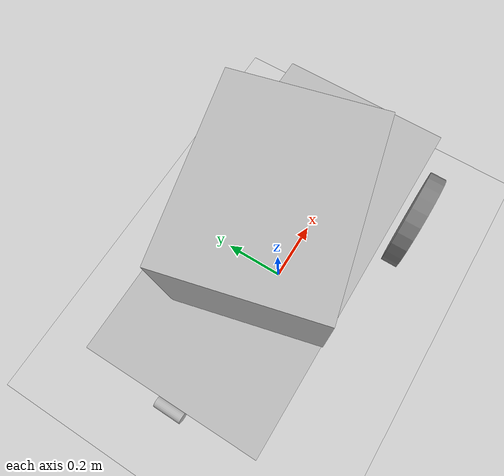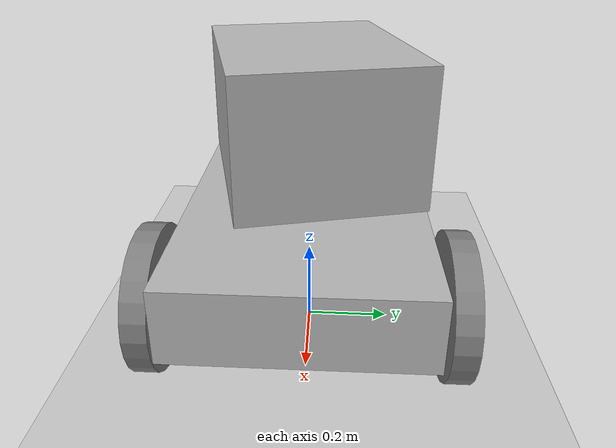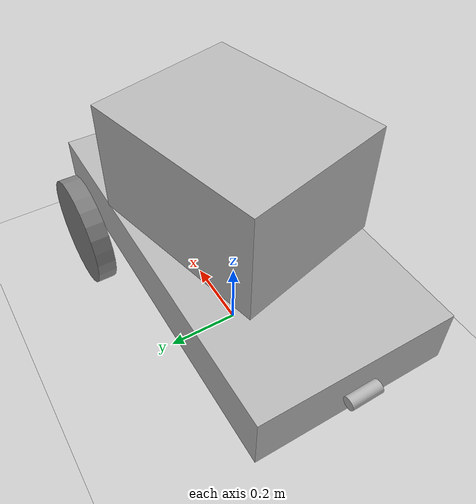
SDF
<?xml version="1.0" ?>

<sdf version="1.6">
  <world name="default">

    <include>
      <uri>model://sun</uri>
    </include>
    <include>
      <uri>model://ground_plane</uri>
    </include>
    <include>
      <pose>0 0 2.33 0 0 0</pose>
      <uri>model://ground_plane</uri>
    </include>
    <include>
      <pose>0 0 0.33 0 0 0</pose>
      <name>dolly1_name</name>
      <uri>model://dolly</uri>
    </include>

  </world>
</sdf>

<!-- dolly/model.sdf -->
<sdf version="1.6">
  <model name='Dolly'>
    <pose>0 0 0.225 0 -0 0</pose>

    <link name='chassis'>
      <inertial>
        <mass>1.0</mass>
        <inertia>
          <ixx>0.0227</ixx>
          <ixy>0</ixy>
          <ixz>0</ixz>
          <iyy>0.0852</iyy>
          <iyz>0</iyz>
          <izz>0.1041</izz>
        </inertia>
      </inertial>
      <visual name='visual'>
        <geometry>
          <box>
            <size>1.0 0.5 0.15</size>
          </box>
        </geometry>
        <material>
          <script>
            <uri>model://dolly/materials/scripts</uri>
            <uri>model://dolly/materials/textures</uri>
            <name>Dolly/fur</name>
          </script>
        </material>
      </visual>

     <!-- RGB camera -->
      <sensor type="camera" name="sensor_camera_rgb">
        <always_on>1</always_on>
        <update_rate>60</update_rate>

        <camera name="camera_rgb">

        </camera>

        <plugin name="camera_plugin" filename="libgazebo_ros_camera.so">
          <ros>
            <namespace>diff_drive_robot</namespace>
            <remapping>image_raw:=custom_img</remapping>
            <remapping>camera_info:=custom_info</remapping>
          </ros>

          <camera_name>custom_rgb</camera_name>
          <frame_name>camera_rgb_frame</frame_name>
          <hack_baseline>0.07</hack_baseline>
        </plugin>
      </sensor>

      <visual name="box">
        <pose>0 0 0.08 0 0 0.24</pose>
        <geometry>
          <mesh>
            <uri>model://cardboard_box/meshes/cardboard_box.dae</uri>
            <scale>1.25931896 1.007455168 0.755591376</scale>
          </mesh>
        </geometry>
      </visual>
      <sensor name="sensor_ray" type="ray">
        <pose>0.5 0 0 0 0 0</pose>
        <ray>
          <scan>
            <horizontal>
              <samples>200</samples>
              <resolution>1.0</resolution>
              <min_angle>-1.0</min_angle>
              <max_angle>1.0</max_angle>
            </horizontal>
          </scan>
          <range>
            <min>0.05</min>
            <max>10.0</max>
          </range>
        </ray>
        <always_on>true</always_on>
        <visualize>true</visualize>
        <update_rate>100.0</update_rate>
        <plugin name="laser" filename="libgazebo_ros_ray_sensor.so">
          <ros>
            <namespace>/dolly</namespace>
            <remapping>~/out:=laser_scan</remapping>
          </ros>
          <output_type>sensor_msgs/LaserScan</output_type>
        </plugin>
      </sensor>
    </link>
    <link name='caster'>
      <pose>-0.3 0 -0.125 0 0 0</pose>
      <inertial>
        <mass>0.0415553</mass>
        <inertia>
          <ixx>7.97741e-05</ixx>
          <ixy>0</ixy>
          <ixz>0</ixz>
          <iyy>7.97741e-05</iyy>
          <iyz>0</iyz>
          <izz>7.97741e-05</izz>
        </inertia>
      </inertial>
      <visual name='visual'>
        <geometry>
          <sphere>
            <radius>0.1</radius>
          </sphere>
        </geometry>
        <material>
          <diffuse>0.5 0.5 0.5 1</diffuse>
          <ambient>0 0 0 1</ambient>
          <specular>1 1 1 1</specular>
          <emissive>0 0 0 1</emissive>
        </material>
      </visual>
      <collision name='collision'>
        <geometry>
          <sphere>
            <radius>0.1</radius>
          </sphere>
        </geometry>
        <surface>
          <friction>
            <ode>
              <mu>1</mu>
              <mu2>1</mu2>
              <slip1>0</slip1>
              <slip2>0</slip2>
            </ode>
          </friction>
          <contact>
            <ode>
              <soft_cfm>0</soft_cfm>
              <soft_erp>0.2</soft_erp>
              <kp>1e+13</kp>
              <kd>1</kd>
              <max_vel>0.01</max_vel>
              <min_depth>0</min_depth>
            </ode>
          </contact>
        </surface>
      </collision>
    </link>

    <link name='left_wheel'>
      <pose>0.3 0.3 -0.075 -1.5707 0 0</pose>
      <inertial>
        <mass>0.5</mass>
        <inertia>
          <ixx>0.0029</ixx>
          <ixy>0</ixy>
          <ixz>0</ixz>
          <iyy>0.0029</iyy>
          <iyz>0</iyz>
          <izz>0.0056</izz>
        </inertia>
      </inertial>
      <visual name='visual'>
        <geometry>
          <cylinder>
            <radius>0.15</radius>
            <length>0.05</length>
          </cylinder>
        </geometry>
        <material>
          <diffuse>0.5 0.5 0.5 1</diffuse>
          <ambient>0 0 0 1</ambient>
          <specular>1 1 1 1</specular>
          <emissive>0 0 0 1</emissive>
        </material>
      </visual>
      <collision name='collision'>
        <geometry>
          <sphere>
            <radius>0.15</radius>
          </sphere>
        </geometry>
        <surface>
          <friction>
            <ode>
              <mu>1</mu>
              <mu2>1</mu2>
              <slip1>0</slip1>
              <slip2>0</slip2>
            </ode>
          </friction>
          <contact>
            <ode>
              <soft_cfm>0</soft_cfm>
              <soft_erp>0.2</soft_erp>
              <kp>1e+13</kp>
              <kd>1</kd>
              <max_vel>0.01</max_vel>
              <min_depth>0.01</min_depth>
            </ode>
          </contact>
        </surface>
      </collision>
    </link>

    <link name='right_wheel'>
      <pose>0.3 -0.3 -0.075 -1.5707 0 0</pose>
      <inertial>
        <mass>0.5</mass>
        <inertia>
          <ixx>0.0029</ixx>
          <ixy>0</ixy>
          <ixz>0</ixz>
          <iyy>0.0029</iyy>
          <iyz>0</iyz>
          <izz>0.0056</izz>
        </inertia>
      </inertial>
      <visual name='visual'>
        <geometry>
          <cylinder>
            <radius>0.15</radius>
            <length>0.05</length>
          </cylinder>
        </geometry>
        <material>
          <diffuse>0.5 0.5 0.5 1</diffuse>
          <ambient>0 0 0 1</ambient>
          <specular>1 1 1 1</specular>
          <emissive>0 0 0 1</emissive>
        </material>
      </visual>
      <collision name='collision'>
        <geometry>
          <sphere>
            <radius>0.15</radius>
          </sphere>
        </geometry>
        <surface>
          <friction>
            <ode>
              <mu>1</mu>
              <mu2>1</mu2>
              <slip1>0</slip1>
              <slip2>0</slip2>
            </ode>
          </friction>
          <contact>
            <ode>
              <soft_cfm>0</soft_cfm>
              <soft_erp>0.2</soft_erp>
              <kp>1e+13</kp>
              <kd>1</kd>
              <max_vel>0.01</max_vel>
              <min_depth>0.01</min_depth>
            </ode>
          </contact>
        </surface>
      </collision>
    </link>

    <link name='tail'>
      <pose>-0.52 0 0 -1.6 0 0</pose>
      <inertial>
        <mass>0.0254232</mass>
        <inertia>
          <ixx>1.528e-05</ixx>
          <ixy>0</ixy>
          <ixz>0</ixz>
          <iyy>1.528e-05</iyy>
          <iyz>0</iyz>
          <izz>3.45e-06</izz>
        </inertia>
        <pose frame=''>0 0 -0.04 0 -0 0</pose>
      </inertial>
      <visual name='visual'>
        <geometry>
          <cylinder>
            <radius>0.016468</radius>
            <length>0.08</length>
          </cylinder>
        </geometry>
        <material>
          <script>
            <uri>model://dolly/materials/scripts</uri>
            <uri>model://dolly/materials/textures</uri>
            <name>Dolly/fur</name>
          </script>
        </material>
      </visual>
    </link>

    <joint name='left_wheel_joint' type='revolute'>
      <parent>chassis</parent>
      <child>left_wheel</child>
      <axis>
        <xyz>0 0 1</xyz>
        <limit>
          <lower>-1.79769e+308</lower>
          <upper>1.79769e+308</upper>
        </limit>
      </axis>
    </joint>

    <joint name='right_wheel_joint' type='revolute'>
      <parent>chassis</parent>
      <child>right_wheel</child>
      <axis>
        <xyz>0 0 1</xyz>
        <limit>
          <lower>-1.79769e+308</lower>
          <upper>1.79769e+308</upper>
        </limit>
      </axis>
    </joint>

    <joint name='caster_wheel' type='ball'>
      <parent>chassis</parent>
      <child>caster</child>
    </joint>

    <joint name='tail_joint' type='revolute'>
      <parent>chassis</parent>
      <child>tail</child>
      <pose>0 0 0.04 0 -0 0</pose>
      <axis>
        <xyz>1 0 0</xyz>
        <use_parent_model_frame>0</use_parent_model_frame>
        <limit>
          <lower>-1.79769e+308</lower>
          <upper>1.79769e+308</upper>
          <effort>-1</effort>
          <velocity>-1</velocity>
        </limit>
        <dynamics>
          <spring_reference>0</spring_reference>
          <spring_stiffness>0</spring_stiffness>
          <damping>0</damping>
          <friction>0</friction>
        </dynamics>
      </axis>
      <physics>
        <ode>
          <limit>
            <cfm>0</cfm>
            <erp>0.2</erp>
          </limit>
          <suspension>
            <cfm>0</cfm>
            <erp>0.2</erp>
          </suspension>
        </ode>
      </physics>
    </joint>

    <!--
        Load Gazebo-ROS's diff-drive controller, which exposes a ROS interface.
    -->
    <plugin name='diff_drive' filename='libgazebo_ros_diff_drive.so'>

      <ros>
        <namespace>/dolly</namespace>
      </ros>

      <!-- wheels -->
      <left_joint>left_wheel_joint</left_joint>
      <right_joint>right_wheel_joint</right_joint>

      <!-- kinematics -->
      <wheel_separation>1.25</wheel_separation>
      <wheel_diameter>0.3</wheel_diameter>

      <!-- limits -->
      <max_wheel_torque>20</max_wheel_torque>
      <max_wheel_acceleration>1.0</max_wheel_acceleration>

      <!-- output -->
      <publish_odom>true</publish_odom>
      <publish_odom_tf>true</publish_odom_tf>

      <odometry_frame>odom_demo</odometry_frame>
      <robot_base_frame>chassis</robot_base_frame>

    </plugin>

  </model>
</sdf>
